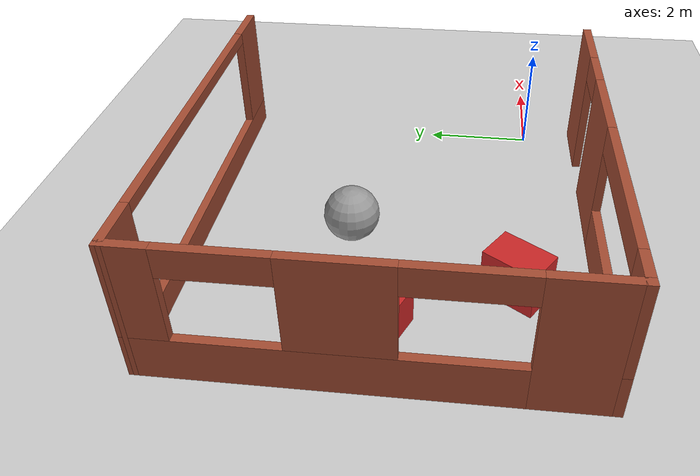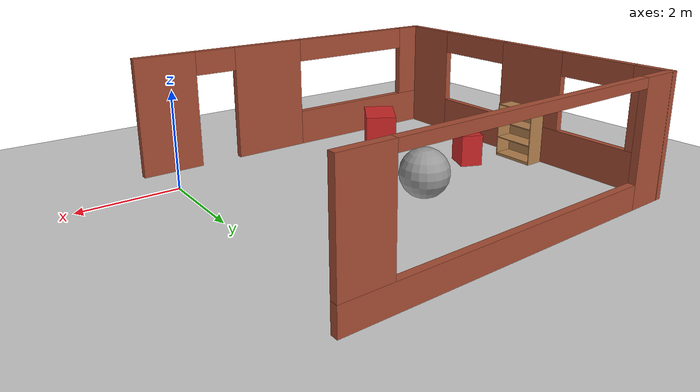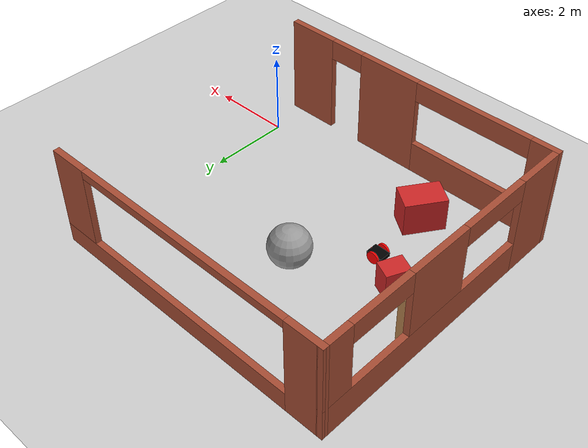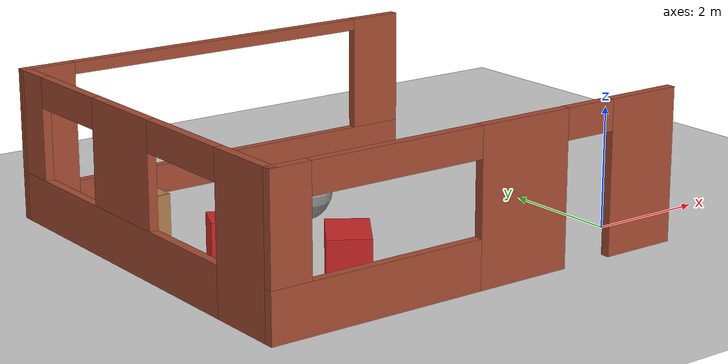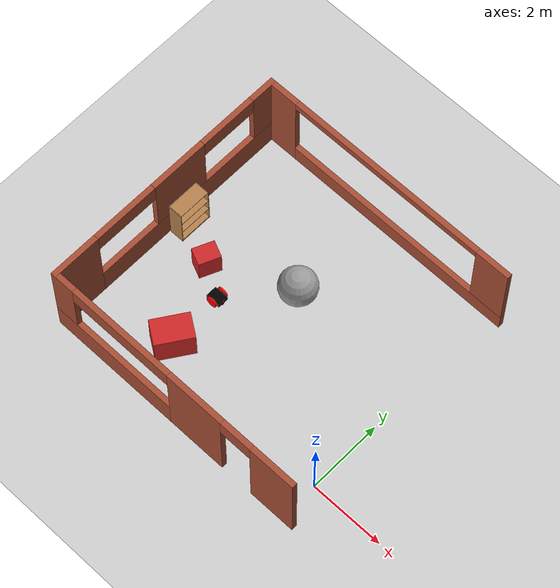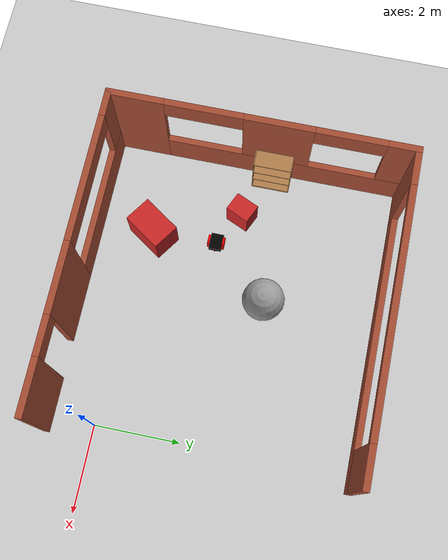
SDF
<sdf version="1.7">
 <world name="default">
  <model name="ground_plane">
   <static>1</static>
   <link name="link">
    <collision name="collision">
     <geometry><plane><normal>0 0 1</normal><size>100 100</size></plane></geometry>
     <surface>
      <contact><collide_bitmask>65535</collide_bitmask></contact>
      <friction><ode><mu>100</mu><mu2>50</mu2></ode></friction>
     </surface>
    </collision>
    <visual name="visual">
     <cast_shadows>0</cast_shadows>
     <geometry><plane><normal>0 0 1</normal><size>100 100</size></plane></geometry>
     <material>
      <script><uri>file://media/materials/scripts/gazebo.material</uri><name>Gazebo/Grey</name></script>
     </material>
    </visual>
   </link>
  </model>
  <model name="bookshelf">
   <static>1</static>
   <link name="link">
    <inertial><mass>1</mass></inertial>
    <collision name="back">
     <pose>0 0.005 0.6 0 -0 0</pose>
     <geometry><box><size>0.9 0.01 1.2</size></box></geometry>
    </collision>
    <visual name="visual1">
     <pose>0 0.005 0.6 0 -0 0</pose>
     <geometry><box><size>0.9 0.01 1.2</size></box></geometry>
     <material>
      <script><uri>file://media/materials/scripts/gazebo.material</uri><name>Gazebo/Wood</name></script>
     </material>
    </visual>
    <collision name="left_side">
     <pose>0.45 -0.195 0.6 0 -0 0</pose>
     <geometry><box><size>0.02 0.4 1.2</size></box></geometry>
    </collision>
    <visual name="visual2">
     <pose>0.45 -0.195 0.6 0 -0 0</pose>
     <geometry><box><size>0.02 0.4 1.2</size></box></geometry>
     <material>
      <script><uri>file://media/materials/scripts/gazebo.material</uri><name>Gazebo/Wood</name></script>
     </material>
    </visual>
    <collision name="right_side">
     <pose>-0.45 -0.195 0.6 0 -0 0</pose>
     <geometry><box><size>0.02 0.4 1.2</size></box></geometry>
    </collision>
    <visual name="visual3">
     <pose>-0.45 -0.195 0.6 0 -0 0</pose>
     <geometry><box><size>0.02 0.4 1.2</size></box></geometry>
     <material>
      <script><uri>file://media/materials/scripts/gazebo.material</uri><name>Gazebo/Wood</name></script>
     </material>
    </visual>
    <collision name="bottom">
     <pose>0 -0.195 0.03 0 -0 0</pose>
     <geometry><box><size>0.88 0.4 0.06</size></box></geometry>
    </collision>
    <visual name="visual4">
     <pose>0 -0.195 0.03 0 -0 0</pose>
     <geometry><box><size>0.88 0.4 0.06</size></box></geometry>
     <material>
      <script><uri>file://media/materials/scripts/gazebo.material</uri><name>Gazebo/Wood</name></script>
     </material>
    </visual>
    <collision name="top">
     <pose>0 -0.195 1.19 0 -0 0</pose>
     <geometry><box><size>0.88 0.4 0.02</size></box></geometry>
    </collision>
    <visual name="visual5">
     <pose>0 -0.195 1.19 0 -0 0</pose>
     <geometry><box><size>0.88 0.4 0.02</size></box></geometry>
     <material>
      <script><uri>file://media/materials/scripts/gazebo.material</uri><name>Gazebo/Wood</name></script>
     </material>
    </visual>
    <collision name="low_shelf">
     <pose>0 -0.195 0.43 0 -0 0</pose>
     <geometry><box><size>0.88 0.4 0.02</size></box></geometry>
    </collision>
    <visual name="visual6">
     <pose>0 -0.195 0.43 0 -0 0</pose>
     <geometry><box><size>0.88 0.4 0.02</size></box></geometry>
     <material>
      <script><uri>file://media/materials/scripts/gazebo.material</uri><name>Gazebo/Wood</name></script>
     </material>
    </visual>
    <collision name="high_shelf">
     <pose>0 -0.195 0.8 0 -0 0</pose>
     <geometry><box><size>0.88 0.4 0.02</size></box></geometry>
    </collision>
    <visual name="visual7">
     <pose>0 -0.195 0.8 0 -0 0</pose>
     <geometry><box><size>0.88 0.4 0.02</size></box></geometry>
     <material>
      <script><uri>file://media/materials/scripts/gazebo.material</uri><name>Gazebo/Wood</name></script>
     </material>
    </visual>
   </link>
   <pose>-6.96679 2.8402 0 0 -0 1.5708</pose>
  </model>
  <model name="unit_sphere">
   <pose>-3.59754 3.23444 0.5 0 -0 0</pose>
   <link name="link">
    <inertial>
     <mass>1</mass>
     <inertia><ixx>0.1</ixx><ixy>0</ixy><ixz>0</ixz><iyy>0.1</iyy><iyz>0</iyz><izz>0.1</izz></inertia>
    </inertial>
    <collision name="collision"><geometry><sphere><radius>0.5</radius></sphere></geometry></collision>
    <visual name="visual">
     <geometry><sphere><radius>0.5</radius></sphere></geometry>
     <material>
      <script><name>Gazebo/Grey</name><uri>file://media/materials/scripts/gazebo.material</uri></script>
     </material>
    </visual>
   </link>
  </model>
  <model name="AssignmentBuilding_0">
   <link name="Wall_36">
    <pose>-2.70744 6.37584 0 0 -0 0</pose>
    <inertial>
     <mass>1</mass>
     <inertia><ixx>1</ixx><ixy>0</ixy><ixz>0</ixz><iyy>1</iyy><iyz>0</iyz><izz>1</izz></inertia>
    </inertial>
    <visual name="Wall_36_Visual_0">
     <pose>-3.28639 0 1.25 0 -0 0</pose>
     <geometry><box><size>0.927226 0.15 2.5</size></box></geometry>
     <material>
      <script><uri>file://media/materials/scripts/gazebo.material</uri><name>Gazebo/Bricks</name></script>
      <ambient>1 1 1 1</ambient>
      <shader type="pixel"><normal_map>__default__</normal_map></shader>
      <diffuse>0 0 0 1</diffuse>
      <specular>0 0 0 1</specular>
      <emissive>0 0 0 1</emissive>
     </material>
     <meta><layer>0</layer></meta>
    </visual>
    <visual name="Wall_36_Visual_1">
     <pose>0.463613 0 0.25 0 -0 0</pose>
     <geometry><box><size>6.57277 0.15 0.5</size></box></geometry>
     <material>
      <script><uri>file://media/materials/scripts/gazebo.material</uri><name>Gazebo/Bricks</name></script>
      <ambient>1 1 1 1</ambient>
      <shader type="pixel"><normal_map>__default__</normal_map></shader>
      <diffuse>0.7 0.7 0.7 1</diffuse>
      <specular>0.01 0.01 0.01 1</specular>
      <emissive>0 0 0 1</emissive>
     </material>
     <meta><layer>0</layer></meta>
    </visual>
    <visual name="Wall_36_Visual_2">
     <pose>3.27261 0 1.5 0 -0 0</pose>
     <geometry><box><size>0.954774 0.15 2</size></box></geometry>
     <material>
      <script><uri>file://media/materials/scripts/gazebo.material</uri><name>Gazebo/Bricks</name></script>
      <ambient>1 1 1 1</ambient>
      <shader type="pixel"><normal_map>__default__</normal_map></shader>
      <diffuse>0.7 0.7 0.7 1</diffuse>
      <specular>0.01 0.01 0.01 1</specular>
      <emissive>0 0 0 1</emissive>
     </material>
     <meta><layer>0</layer></meta>
    </visual>
    <visual name="Wall_36_Visual_3">
     <pose>-0.013774 0 2.4 0 -0 0</pose>
     <geometry><box><size>5.618 0.15 0.2</size></box></geometry>
     <material>
      <script><uri>file://media/materials/scripts/gazebo.material</uri><name>Gazebo/Bricks</name></script>
      <ambient>1 1 1 1</ambient>
      <shader type="pixel"><normal_map>__default__</normal_map></shader>
      <diffuse>0.7 0.7 0.7 1</diffuse>
      <specular>0.01 0.01 0.01 1</specular>
      <emissive>0 0 0 1</emissive>
     </material>
     <meta><layer>0</layer></meta>
    </visual>
    <collision name="Wall_36_Collision_0">
     <pose>-3.28639 0 1.25 0 -0 0</pose>
     <geometry><box><size>0.927226 0.15 2.5</size></box></geometry>
     <surface>
      <friction>
       <ode><mu>1</mu><mu2>1</mu2><fdir1>0 0 0</fdir1><slip1>0</slip1><slip2>0</slip2></ode>
       <torsional>
        <coefficient>1</coefficient>
        <patch_radius>0</patch_radius>
        <surface_radius>0</surface_radius>
        <use_patch_radius>1</use_patch_radius>
        <ode><slip>0</slip></ode>
       </torsional>
      </friction>
      <bounce><restitution_coefficient>0</restitution_coefficient><threshold>1e+06</threshold></bounce>
      <contact>
       <collide_without_contact>0</collide_without_contact>
       <collide_without_contact_bitmask>1</collide_without_contact_bitmask>
       <collide_bitmask>1</collide_bitmask>
       <ode>
        <soft_cfm>0</soft_cfm>
        <soft_erp>0.2</soft_erp>
        <kp>1e+13</kp>
        <kd>1</kd>
        <max_vel>0.01</max_vel>
        <min_depth>0</min_depth>
       </ode>
       <bullet>
        <split_impulse>1</split_impulse>
        <split_impulse_penetration_threshold>-0.01</split_impulse_penetration_threshold>
        <soft_cfm>0</soft_cfm>
        <soft_erp>0.2</soft_erp>
        <kp>1e+13</kp>
        <kd>1</kd>
       </bullet>
      </contact>
     </surface>
    </collision>
    <collision name="Wall_36_Collision_1">
     <pose>0.463613 0 0.25 0 -0 0</pose>
     <geometry><box><size>6.57277 0.15 0.5</size></box></geometry>
     <surface>
      <friction>
       <ode><mu>1</mu><mu2>1</mu2><fdir1>0 0 0</fdir1><slip1>0</slip1><slip2>0</slip2></ode>
       <torsional>
        <coefficient>1</coefficient>
        <patch_radius>0</patch_radius>
        <surface_radius>0</surface_radius>
        <use_patch_radius>1</use_patch_radius>
        <ode><slip>0</slip></ode>
       </torsional>
      </friction>
      <bounce><restitution_coefficient>0</restitution_coefficient><threshold>1e+06</threshold></bounce>
      <contact>
       <collide_without_contact>0</collide_without_contact>
       <collide_without_contact_bitmask>1</collide_without_contact_bitmask>
       <collide_bitmask>1</collide_bitmask>
       <ode>
        <soft_cfm>0</soft_cfm>
        <soft_erp>0.2</soft_erp>
        <kp>1e+13</kp>
        <kd>1</kd>
        <max_vel>0.01</max_vel>
        <min_depth>0</min_depth>
       </ode>
       <bullet>
        <split_impulse>1</split_impulse>
        <split_impulse_penetration_threshold>-0.01</split_impulse_penetration_threshold>
        <soft_cfm>0</soft_cfm>
        <soft_erp>0.2</soft_erp>
        <kp>1e+13</kp>
        <kd>1</kd>
       </bullet>
      </contact>
     </surface>
    </collision>
    <collision name="Wall_36_Collision_2">
     <pose>3.27261 0 1.5 0 -0 0</pose>
     <geometry><box><size>0.954774 0.15 2</size></box></geometry>
     <surface>
      <friction>
       <ode><mu>1</mu><mu2>1</mu2><fdir1>0 0 0</fdir1><slip1>0</slip1><slip2>0</slip2></ode>
       <torsional>
        <coefficient>1</coefficient>
        <patch_radius>0</patch_radius>
        <surface_radius>0</surface_radius>
        <use_patch_radius>1</use_patch_radius>
        <ode><slip>0</slip></ode>
       </torsional>
      </friction>
      <bounce><restitution_coefficient>0</restitution_coefficient><threshold>1e+06</threshold></bounce>
      <contact>
       <collide_without_contact>0</collide_without_contact>
       <collide_without_contact_bitmask>1</collide_without_contact_bitmask>
       <collide_bitmask>1</collide_bitmask>
       <ode>
        <soft_cfm>0</soft_cfm>
        <soft_erp>0.2</soft_erp>
        <kp>1e+13</kp>
        <kd>1</kd>
        <max_vel>0.01</max_vel>
        <min_depth>0</min_depth>
       </ode>
       <bullet>
        <split_impulse>1</split_impulse>
        <split_impulse_penetration_threshold>-0.01</split_impulse_penetration_threshold>
        <soft_cfm>0</soft_cfm>
        <soft_erp>0.2</soft_erp>
        <kp>1e+13</kp>
        <kd>1</kd>
       </bullet>
      </contact>
     </surface>
    </collision>
    <collision name="Wall_36_Collision_3">
     <pose>-0.013774 0 2.4 0 -0 0</pose>
     <geometry><box><size>5.618 0.15 0.2</size></box></geometry>
     <surface>
      <friction>
       <ode><mu>1</mu><mu2>1</mu2><fdir1>0 0 0</fdir1><slip1>0</slip1><slip2>0</slip2></ode>
       <torsional>
        <coefficient>1</coefficient>
        <patch_radius>0</patch_radius>
        <surface_radius>0</surface_radius>
        <use_patch_radius>1</use_patch_radius>
        <ode><slip>0</slip></ode>
       </torsional>
      </friction>
      <bounce><restitution_coefficient>0</restitution_coefficient><threshold>1e+06</threshold></bounce>
      <contact>
       <collide_without_contact>0</collide_without_contact>
       <collide_without_contact_bitmask>1</collide_without_contact_bitmask>
       <collide_bitmask>1</collide_bitmask>
       <ode>
        <soft_cfm>0</soft_cfm>
        <soft_erp>0.2</soft_erp>
        <kp>1e+13</kp>
        <kd>1</kd>
        <max_vel>0.01</max_vel>
        <min_depth>0</min_depth>
       </ode>
       <bullet>
        <split_impulse>1</split_impulse>
        <split_impulse_penetration_threshold>-0.01</split_impulse_penetration_threshold>
        <soft_cfm>0</soft_cfm>
        <soft_erp>0.2</soft_erp>
        <kp>1e+13</kp>
        <kd>1</kd>
       </bullet>
      </contact>
     </surface>
    </collision>
   </link>
   <link name="Wall_48">
    <pose>-6.38208 2.87945 0 0 -0 1.5709</pose>
    <inertial>
     <mass>1</mass>
     <inertia><ixx>1</ixx><ixy>0</ixy><ixz>0</ixz><iyy>1</iyy><iyz>0</iyz><izz>1</izz></inertia>
    </inertial>
    <visual name="Wall_48_Visual_0">
     <pose>-2.89905 0 1.25 0 -0 0</pose>
     <geometry><box><size>1.34467 0.15 2.5</size></box></geometry>
     <material>
      <script><uri>file://media/materials/scripts/gazebo.material</uri><name>Gazebo/Bricks</name></script>
      <ambient>1 1 1 1</ambient>
      <shader type="pixel"><normal_map>__default__</normal_map></shader>
      <diffuse>1 1 1 1</diffuse>
      <specular>0.2 0.2 0.2 1</specular>
      <emissive>0 0 0 1</emissive>
     </material>
     <meta><layer>0</layer></meta>
    </visual>
    <visual name="Wall_48_Visual_1">
     <pose>0.672335 0 0.4 0 -0 0</pose>
     <geometry><box><size>5.7981 0.15 0.8</size></box></geometry>
     <material>
      <script><uri>file://media/materials/scripts/gazebo.material</uri><name>Gazebo/Bricks</name></script>
      <ambient>1 1 1 1</ambient>
      <shader type="pixel"><normal_map>__default__</normal_map></shader>
      <diffuse>0.7 0.7 0.7 1</diffuse>
      <specular>0.01 0.01 0.01 1</specular>
      <emissive>0 0 0 1</emissive>
     </material>
     <meta><layer>0</layer></meta>
    </visual>
    <visual name="Wall_48_Visual_2">
     <pose>0.391018 0 1.65 0 -0 0</pose>
     <geometry><box><size>1.60972 0.15 1.7</size></box></geometry>
     <material>
      <script><uri>file://media/materials/scripts/gazebo.material</uri><name>Gazebo/Bricks</name></script>
      <ambient>1 1 1 1</ambient>
      <shader type="pixel"><normal_map>__default__</normal_map></shader>
      <diffuse>0.7 0.7 0.7 1</diffuse>
      <specular>0.01 0.01 0.01 1</specular>
      <emissive>0 0 0 1</emissive>
     </material>
     <meta><layer>0</layer></meta>
    </visual>
    <visual name="Wall_48_Visual_3">
     <pose>3.19363 0 1.65 0 -0 0</pose>
     <geometry><box><size>0.755509 0.15 1.7</size></box></geometry>
     <material>
      <script><uri>file://media/materials/scripts/gazebo.material</uri><name>Gazebo/Bricks</name></script>
      <ambient>1 1 1 1</ambient>
      <shader type="pixel"><normal_map>__default__</normal_map></shader>
      <diffuse>0.7 0.7 0.7 1</diffuse>
      <specular>0.01 0.01 0.01 1</specular>
      <emissive>0 0 0 1</emissive>
     </material>
     <meta><layer>0</layer></meta>
    </visual>
    <visual name="Wall_48_Visual_4">
     <pose>-1.32028 0 2.25 0 -0 0</pose>
     <geometry><box><size>1.81288 0.15 0.5</size></box></geometry>
     <material>
      <script><uri>file://media/materials/scripts/gazebo.material</uri><name>Gazebo/Bricks</name></script>
      <ambient>1 1 1 1</ambient>
      <shader type="pixel"><normal_map>__default__</normal_map></shader>
      <diffuse>0.7 0.7 0.7 1</diffuse>
      <specular>0.01 0.01 0.01 1</specular>
      <emissive>0 0 0 1</emissive>
     </material>
     <meta><layer>0</layer></meta>
    </visual>
    <visual name="Wall_48_Visual_5">
     <pose>2.00588 0 2.25 0 -0 0</pose>
     <geometry><box><size>1.62 0.15 0.5</size></box></geometry>
     <material>
      <script><uri>file://media/materials/scripts/gazebo.material</uri><name>Gazebo/Bricks</name></script>
      <ambient>1 1 1 1</ambient>
      <shader type="pixel"><normal_map>__default__</normal_map></shader>
      <diffuse>0.7 0.7 0.7 1</diffuse>
      <specular>0.01 0.01 0.01 1</specular>
      <emissive>0 0 0 1</emissive>
     </material>
     <meta><layer>0</layer></meta>
    </visual>
    <collision name="Wall_48_Collision_0">
     <pose>-2.89905 0 1.25 0 -0 0</pose>
     <geometry><box><size>1.34467 0.15 2.5</size></box></geometry>
     <surface>
      <friction>
       <ode><mu>1</mu><mu2>1</mu2><fdir1>0 0 0</fdir1><slip1>0</slip1><slip2>0</slip2></ode>
       <torsional>
        <coefficient>1</coefficient>
        <patch_radius>0</patch_radius>
        <surface_radius>0</surface_radius>
        <use_patch_radius>1</use_patch_radius>
        <ode><slip>0</slip></ode>
       </torsional>
      </friction>
      <bounce><restitution_coefficient>0</restitution_coefficient><threshold>1e+06</threshold></bounce>
      <contact>
       <collide_without_contact>0</collide_without_contact>
       <collide_without_contact_bitmask>1</collide_without_contact_bitmask>
       <collide_bitmask>1</collide_bitmask>
       <ode>
        <soft_cfm>0</soft_cfm>
        <soft_erp>0.2</soft_erp>
        <kp>1e+13</kp>
        <kd>1</kd>
        <max_vel>0.01</max_vel>
        <min_depth>0</min_depth>
       </ode>
       <bullet>
        <split_impulse>1</split_impulse>
        <split_impulse_penetration_threshold>-0.01</split_impulse_penetration_threshold>
        <soft_cfm>0</soft_cfm>
        <soft_erp>0.2</soft_erp>
        <kp>1e+13</kp>
        <kd>1</kd>
       </bullet>
      </contact>
     </surface>
    </collision>
    <collision name="Wall_48_Collision_1">
     <pose>0.672335 0 0.4 0 -0 0</pose>
     <geometry><box><size>5.7981 0.15 0.8</size></box></geometry>
     <surface>
      <friction>
       <ode><mu>1</mu><mu2>1</mu2><fdir1>0 0 0</fdir1><slip1>0</slip1><slip2>0</slip2></ode>
       <torsional>
        <coefficient>1</coefficient>
        <patch_radius>0</patch_radius>
        <surface_radius>0</surface_radius>
        <use_patch_radius>1</use_patch_radius>
        <ode><slip>0</slip></ode>
       </torsional>
      </friction>
      <bounce><restitution_coefficient>0</restitution_coefficient><threshold>1e+06</threshold></bounce>
      <contact>
       <collide_without_contact>0</collide_without_contact>
       <collide_without_contact_bitmask>1</collide_without_contact_bitmask>
       <collide_bitmask>1</collide_bitmask>
       <ode>
        <soft_cfm>0</soft_cfm>
        <soft_erp>0.2</soft_erp>
        <kp>1e+13</kp>
        <kd>1</kd>
        <max_vel>0.01</max_vel>
        <min_depth>0</min_depth>
       </ode>
       <bullet>
        <split_impulse>1</split_impulse>
        <split_impulse_penetration_threshold>-0.01</split_impulse_penetration_threshold>
        <soft_cfm>0</soft_cfm>
        <soft_erp>0.2</soft_erp>
        <kp>1e+13</kp>
        <kd>1</kd>
       </bullet>
      </contact>
     </surface>
    </collision>
    <collision name="Wall_48_Collision_2">
     <pose>0.391018 0 1.65 0 -0 0</pose>
     <geometry><box><size>1.60972 0.15 1.7</size></box></geometry>
     <surface>
      <friction>
       <ode><mu>1</mu><mu2>1</mu2><fdir1>0 0 0</fdir1><slip1>0</slip1><slip2>0</slip2></ode>
       <torsional>
        <coefficient>1</coefficient>
        <patch_radius>0</patch_radius>
        <surface_radius>0</surface_radius>
        <use_patch_radius>1</use_patch_radius>
        <ode><slip>0</slip></ode>
       </torsional>
      </friction>
      <bounce><restitution_coefficient>0</restitution_coefficient><threshold>1e+06</threshold></bounce>
      <contact>
       <collide_without_contact>0</collide_without_contact>
       <collide_without_contact_bitmask>1</collide_without_contact_bitmask>
       <collide_bitmask>1</collide_bitmask>
       <ode>
        <soft_cfm>0</soft_cfm>
        <soft_erp>0.2</soft_erp>
        <kp>1e+13</kp>
        <kd>1</kd>
        <max_vel>0.01</max_vel>
        <min_depth>0</min_depth>
       </ode>
       <bullet>
        <split_impulse>1</split_impulse>
        <split_impulse_penetration_threshold>-0.01</split_impulse_penetration_threshold>
        <soft_cfm>0</soft_cfm>
        <soft_erp>0.2</soft_erp>
        <kp>1e+13</kp>
        <kd>1</kd>
       </bullet>
      </contact>
     </surface>
    </collision>
    <collision name="Wall_48_Collision_3">
     <pose>3.19363 0 1.65 0 -0 0</pose>
     <geometry><box><size>0.755509 0.15 1.7</size></box></geometry>
     <surface>
      <friction>
       <ode><mu>1</mu><mu2>1</mu2><fdir1>0 0 0</fdir1><slip1>0</slip1><slip2>0</slip2></ode>
       <torsional>
        <coefficient>1</coefficient>
        <patch_radius>0</patch_radius>
        <surface_radius>0</surface_radius>
        <use_patch_radius>1</use_patch_radius>
        <ode><slip>0</slip></ode>
       </torsional>
      </friction>
      <bounce><restitution_coefficient>0</restitution_coefficient><threshold>1e+06</threshold></bounce>
      <contact>
       <collide_without_contact>0</collide_without_contact>
       <collide_without_contact_bitmask>1</collide_without_contact_bitmask>
       <collide_bitmask>1</collide_bitmask>
       <ode>
        <soft_cfm>0</soft_cfm>
        <soft_erp>0.2</soft_erp>
        <kp>1e+13</kp>
        <kd>1</kd>
        <max_vel>0.01</max_vel>
        <min_depth>0</min_depth>
       </ode>
       <bullet>
        <split_impulse>1</split_impulse>
        <split_impulse_penetration_threshold>-0.01</split_impulse_penetration_threshold>
        <soft_cfm>0</soft_cfm>
        <soft_erp>0.2</soft_erp>
        <kp>1e+13</kp>
        <kd>1</kd>
       </bullet>
      </contact>
     </surface>
    </collision>
    <collision name="Wall_48_Collision_4">
     <pose>-1.32028 0 2.25 0 -0 0</pose>
     <geometry><box><size>1.81288 0.15 0.5</size></box></geometry>
     <surface>
      <friction>
       <ode><mu>1</mu><mu2>1</mu2><fdir1>0 0 0</fdir1><slip1>0</slip1><slip2>0</slip2></ode>
       <torsional>
        <coefficient>1</coefficient>
        <patch_radius>0</patch_radius>
        <surface_radius>0</surface_radius>
        <use_patch_radius>1</use_patch_radius>
        <ode><slip>0</slip></ode>
       </torsional>
      </friction>
      <bounce><restitution_coefficient>0</restitution_coefficient><threshold>1e+06</threshold></bounce>
      <contact>
       <collide_without_contact>0</collide_without_contact>
       <collide_without_contact_bitmask>1</collide_without_contact_bitmask>
       <collide_bitmask>1</collide_bitmask>
       <ode>
        <soft_cfm>0</soft_cfm>
        <soft_erp>0.2</soft_erp>
        <kp>1e+13</kp>
        <kd>1</kd>
        <max_vel>0.01</max_vel>
        <min_depth>0</min_depth>
       </ode>
       <bullet>
        <split_impulse>1</split_impulse>
        <split_impulse_penetration_threshold>-0.01</split_impulse_penetration_threshold>
        <soft_cfm>0</soft_cfm>
        <soft_erp>0.2</soft_erp>
        <kp>1e+13</kp>
        <kd>1</kd>
       </bullet>
      </contact>
     </surface>
    </collision>
    <collision name="Wall_48_Collision_5">
     <pose>2.00588 0 2.25 0 -0 0</pose>
     <geometry><box><size>1.62 0.15 0.5</size></box></geometry>
     <surface>
      <friction>
       <ode><mu>1</mu><mu2>1</mu2><fdir1>0 0 0</fdir1><slip1>0</slip1><slip2>0</slip2></ode>
       <torsional>
        <coefficient>1</coefficient>
        <patch_radius>0</patch_radius>
        <surface_radius>0</surface_radius>
        <use_patch_radius>1</use_patch_radius>
        <ode><slip>0</slip></ode>
       </torsional>
      </friction>
      <bounce><restitution_coefficient>0</restitution_coefficient><threshold>1e+06</threshold></bounce>
      <contact>
       <collide_without_contact>0</collide_without_contact>
       <collide_without_contact_bitmask>1</collide_without_contact_bitmask>
       <collide_bitmask>1</collide_bitmask>
       <ode>
        <soft_cfm>0</soft_cfm>
        <soft_erp>0.2</soft_erp>
        <kp>1e+13</kp>
        <kd>1</kd>
        <max_vel>0.01</max_vel>
        <min_depth>0</min_depth>
       </ode>
       <bullet>
        <split_impulse>1</split_impulse>
        <split_impulse_penetration_threshold>-0.01</split_impulse_penetration_threshold>
        <soft_cfm>0</soft_cfm>
        <soft_erp>0.2</soft_erp>
        <kp>1e+13</kp>
        <kd>1</kd>
       </bullet>
      </contact>
     </surface>
    </collision>
   </link>
   <link name="Wall_50">
    <pose>-2.70755 -0.616637 0 0 0 -3.14151</pose>
    <inertial>
     <mass>1</mass>
     <inertia><ixx>1</ixx><ixy>0</ixy><ixz>0</ixz><iyy>1</iyy><iyz>0</iyz><izz>1</izz></inertia>
    </inertial>
    <visual name="Wall_50_Visual_0">
     <pose>-3.10542 0 1.25 0 -0 0</pose>
     <geometry><box><size>1.28752 0.15 2.5</size></box></geometry>
     <material>
      <script><uri>file://media/materials/scripts/gazebo.material</uri><name>Gazebo/Bricks</name></script>
      <ambient>1 1 1 1</ambient>
      <shader type="pixel"><normal_map>__default__</normal_map></shader>
      <diffuse>1 1 1 1</diffuse>
      <specular>0.2 0.2 0.2 1</specular>
      <emissive>0 0 0 1</emissive>
     </material>
     <meta><layer>0</layer></meta>
    </visual>
    <visual name="Wall_50_Visual_1">
     <pose>-0.739689 0 1.25 0 -0 0</pose>
     <geometry><box><size>1.64394 0.15 2.5</size></box></geometry>
     <material>
      <script><uri>file://media/materials/scripts/gazebo.material</uri><name>Gazebo/Bricks</name></script>
      <ambient>1 1 1 1</ambient>
      <shader type="pixel"><normal_map>__default__</normal_map></shader>
      <diffuse>0.7 0.7 0.7 1</diffuse>
      <specular>0.01 0.01 0.01 1</specular>
      <emissive>0 0 0 1</emissive>
     </material>
     <meta><layer>0</layer></meta>
    </visual>
    <visual name="Wall_50_Visual_2">
     <pose>1.91573 0 0.4 0 -0 0</pose>
     <geometry><box><size>3.6669 0.15 0.8</size></box></geometry>
     <material>
      <script><uri>file://media/materials/scripts/gazebo.material</uri><name>Gazebo/Bricks</name></script>
      <ambient>1 1 1 1</ambient>
      <shader type="pixel"><normal_map>__default__</normal_map></shader>
      <diffuse>0.7 0.7 0.7 1</diffuse>
      <specular>0.01 0.01 0.01 1</specular>
      <emissive>0 0 0 1</emissive>
     </material>
     <meta><layer>0</layer></meta>
    </visual>
    <visual name="Wall_50_Visual_3">
     <pose>3.40754 0 1.65 0 -0 0</pose>
     <geometry><box><size>0.683277 0.15 1.7</size></box></geometry>
     <material>
      <script><uri>file://media/materials/scripts/gazebo.material</uri><name>Gazebo/Bricks</name></script>
      <ambient>1 1 1 1</ambient>
      <shader type="pixel"><normal_map>__default__</normal_map></shader>
      <diffuse>0.7 0.7 0.7 1</diffuse>
      <specular>0.01 0.01 0.01 1</specular>
      <emissive>0 0 0 1</emissive>
     </material>
     <meta><layer>0</layer></meta>
    </visual>
    <visual name="Wall_50_Visual_4">
     <pose>-2.01166 0 2.25 0 -0 0</pose>
     <geometry><box><size>0.9 0.15 0.5</size></box></geometry>
     <material>
      <script><uri>file://media/materials/scripts/gazebo.material</uri><name>Gazebo/Bricks</name></script>
      <ambient>1 1 1 1</ambient>
      <shader type="pixel"><normal_map>__default__</normal_map></shader>
      <diffuse>0.7 0.7 0.7 1</diffuse>
      <specular>0.01 0.01 0.01 1</specular>
      <emissive>0 0 0 1</emissive>
     </material>
     <meta><layer>0</layer></meta>
    </visual>
    <visual name="Wall_50_Visual_5">
     <pose>1.57409 0 2.25 0 -0 0</pose>
     <geometry><box><size>2.98362 0.15 0.5</size></box></geometry>
     <material>
      <script><uri>file://media/materials/scripts/gazebo.material</uri><name>Gazebo/Bricks</name></script>
      <ambient>1 1 1 1</ambient>
      <shader type="pixel"><normal_map>__default__</normal_map></shader>
      <diffuse>0.7 0.7 0.7 1</diffuse>
      <specular>0.01 0.01 0.01 1</specular>
      <emissive>0 0 0 1</emissive>
     </material>
     <meta><layer>0</layer></meta>
    </visual>
    <collision name="Wall_50_Collision_0">
     <pose>-3.10542 0 1.25 0 -0 0</pose>
     <geometry><box><size>1.28752 0.15 2.5</size></box></geometry>
     <surface>
      <friction>
       <ode><mu>1</mu><mu2>1</mu2><fdir1>0 0 0</fdir1><slip1>0</slip1><slip2>0</slip2></ode>
       <torsional>
        <coefficient>1</coefficient>
        <patch_radius>0</patch_radius>
        <surface_radius>0</surface_radius>
        <use_patch_radius>1</use_patch_radius>
        <ode><slip>0</slip></ode>
       </torsional>
      </friction>
      <bounce><restitution_coefficient>0</restitution_coefficient><threshold>1e+06</threshold></bounce>
      <contact>
       <collide_without_contact>0</collide_without_contact>
       <collide_without_contact_bitmask>1</collide_without_contact_bitmask>
       <collide_bitmask>1</collide_bitmask>
       <ode>
        <soft_cfm>0</soft_cfm>
        <soft_erp>0.2</soft_erp>
        <kp>1e+13</kp>
        <kd>1</kd>
        <max_vel>0.01</max_vel>
        <min_depth>0</min_depth>
       </ode>
       <bullet>
        <split_impulse>1</split_impulse>
        <split_impulse_penetration_threshold>-0.01</split_impulse_penetration_threshold>
        <soft_cfm>0</soft_cfm>
        <soft_erp>0.2</soft_erp>
        <kp>1e+13</kp>
        <kd>1</kd>
       </bullet>
      </contact>
     </surface>
    </collision>
    <collision name="Wall_50_Collision_1">
     <pose>-0.739689 0 1.25 0 -0 0</pose>
     <geometry><box><size>1.64394 0.15 2.5</size></box></geometry>
     <surface>
      <friction>
       <ode><mu>1</mu><mu2>1</mu2><fdir1>0 0 0</fdir1><slip1>0</slip1><slip2>0</slip2></ode>
       <torsional>
        <coefficient>1</coefficient>
        <patch_radius>0</patch_radius>
        <surface_radius>0</surface_radius>
        <use_patch_radius>1</use_patch_radius>
        <ode><slip>0</slip></ode>
       </torsional>
      </friction>
      <bounce><restitution_coefficient>0</restitution_coefficient><threshold>1e+06</threshold></bounce>
      <contact>
       <collide_without_contact>0</collide_without_contact>
       <collide_without_contact_bitmask>1</collide_without_contact_bitmask>
       <collide_bitmask>1</collide_bitmask>
       <ode>
        <soft_cfm>0</soft_cfm>
        <soft_erp>0.2</soft_erp>
        <kp>1e+13</kp>
        <kd>1</kd>
        <max_vel>0.01</max_vel>
        <min_depth>0</min_depth>
       </ode>
       <bullet>
        <split_impulse>1</split_impulse>
        <split_impulse_penetration_threshold>-0.01</split_impulse_penetration_threshold>
        <soft_cfm>0</soft_cfm>
        <soft_erp>0.2</soft_erp>
        <kp>1e+13</kp>
        <kd>1</kd>
       </bullet>
      </contact>
     </surface>
    </collision>
    <collision name="Wall_50_Collision_2">
     <pose>1.91573 0 0.4 0 -0 0</pose>
     <geometry><box><size>3.6669 0.15 0.8</size></box></geometry>
     <surface>
      <friction>
       <ode><mu>1</mu><mu2>1</mu2><fdir1>0 0 0</fdir1><slip1>0</slip1><slip2>0</slip2></ode>
       <torsional>
        <coefficient>1</coefficient>
        <patch_radius>0</patch_radius>
        <surface_radius>0</surface_radius>
        <use_patch_radius>1</use_patch_radius>
        <ode><slip>0</slip></ode>
       </torsional>
      </friction>
      <bounce><restitution_coefficient>0</restitution_coefficient><threshold>1e+06</threshold></bounce>
      <contact>
       <collide_without_contact>0</collide_without_contact>
       <collide_without_contact_bitmask>1</collide_without_contact_bitmask>
       <collide_bitmask>1</collide_bitmask>
       <ode>
        <soft_cfm>0</soft_cfm>
        <soft_erp>0.2</soft_erp>
        <kp>1e+13</kp>
        <kd>1</kd>
        <max_vel>0.01</max_vel>
        <min_depth>0</min_depth>
       </ode>
       <bullet>
        <split_impulse>1</split_impulse>
        <split_impulse_penetration_threshold>-0.01</split_impulse_penetration_threshold>
        <soft_cfm>0</soft_cfm>
        <soft_erp>0.2</soft_erp>
        <kp>1e+13</kp>
        <kd>1</kd>
       </bullet>
      </contact>
     </surface>
    </collision>
    <collision name="Wall_50_Collision_3">
     <pose>3.40754 0 1.65 0 -0 0</pose>
     <geometry><box><size>0.683277 0.15 1.7</size></box></geometry>
     <surface>
      <friction>
       <ode><mu>1</mu><mu2>1</mu2><fdir1>0 0 0</fdir1><slip1>0</slip1><slip2>0</slip2></ode>
       <torsional>
        <coefficient>1</coefficient>
        <patch_radius>0</patch_radius>
        <surface_radius>0</surface_radius>
        <use_patch_radius>1</use_patch_radius>
        <ode><slip>0</slip></ode>
       </torsional>
      </friction>
      <bounce><restitution_coefficient>0</restitution_coefficient><threshold>1e+06</threshold></bounce>
      <contact>
       <collide_without_contact>0</collide_without_contact>
       <collide_without_contact_bitmask>1</collide_without_contact_bitmask>
       <collide_bitmask>1</collide_bitmask>
       <ode>
        <soft_cfm>0</soft_cfm>
        <soft_erp>0.2</soft_erp>
        <kp>1e+13</kp>
        <kd>1</kd>
        <max_vel>0.01</max_vel>
        <min_depth>0</min_depth>
       </ode>
       <bullet>
        <split_impulse>1</split_impulse>
        <split_impulse_penetration_threshold>-0.01</split_impulse_penetration_threshold>
        <soft_cfm>0</soft_cfm>
        <soft_erp>0.2</soft_erp>
        <kp>1e+13</kp>
        <kd>1</kd>
       </bullet>
      </contact>
     </surface>
    </collision>
    <collision name="Wall_50_Collision_4">
     <pose>-2.01166 0 2.25 0 -0 0</pose>
     <geometry><box><size>0.9 0.15 0.5</size></box></geometry>
     <surface>
      <friction>
       <ode><mu>1</mu><mu2>1</mu2><fdir1>0 0 0</fdir1><slip1>0</slip1><slip2>0</slip2></ode>
       <torsional>
        <coefficient>1</coefficient>
        <patch_radius>0</patch_radius>
        <surface_radius>0</surface_radius>
        <use_patch_radius>1</use_patch_radius>
        <ode><slip>0</slip></ode>
       </torsional>
      </friction>
      <bounce><restitution_coefficient>0</restitution_coefficient><threshold>1e+06</threshold></bounce>
      <contact>
       <collide_without_contact>0</collide_without_contact>
       <collide_without_contact_bitmask>1</collide_without_contact_bitmask>
       <collide_bitmask>1</collide_bitmask>
       <ode>
        <soft_cfm>0</soft_cfm>
        <soft_erp>0.2</soft_erp>
        <kp>1e+13</kp>
        <kd>1</kd>
        <max_vel>0.01</max_vel>
        <min_depth>0</min_depth>
       </ode>
       <bullet>
        <split_impulse>1</split_impulse>
        <split_impulse_penetration_threshold>-0.01</split_impulse_penetration_threshold>
        <soft_cfm>0</soft_cfm>
        <soft_erp>0.2</soft_erp>
        <kp>1e+13</kp>
        <kd>1</kd>
       </bullet>
      </contact>
     </surface>
    </collision>
    <collision name="Wall_50_Collision_5">
     <pose>1.57409 0 2.25 0 -0 0</pose>
     <geometry><box><size>2.98362 0.15 0.5</size></box></geometry>
     <surface>
      <friction>
       <ode><mu>1</mu><mu2>1</mu2><fdir1>0 0 0</fdir1><slip1>0</slip1><slip2>0</slip2></ode>
       <torsional>
        <coefficient>1</coefficient>
        <patch_radius>0</patch_radius>
        <surface_radius>0</surface_radius>
        <use_patch_radius>1</use_patch_radius>
        <ode><slip>0</slip></ode>
       </torsional>
      </friction>
      <bounce><restitution_coefficient>0</restitution_coefficient><threshold>1e+06</threshold></bounce>
      <contact>
       <collide_without_contact>0</collide_without_contact>
       <collide_without_contact_bitmask>1</collide_without_contact_bitmask>
       <collide_bitmask>1</collide_bitmask>
       <ode>
        <soft_cfm>0</soft_cfm>
        <soft_erp>0.2</soft_erp>
        <kp>1e+13</kp>
        <kd>1</kd>
        <max_vel>0.01</max_vel>
        <min_depth>0</min_depth>
       </ode>
       <bullet>
        <split_impulse>1</split_impulse>
        <split_impulse_penetration_threshold>-0.01</split_impulse_penetration_threshold>
        <soft_cfm>0</soft_cfm>
        <soft_erp>0.2</soft_erp>
        <kp>1e+13</kp>
        <kd>1</kd>
       </bullet>
      </contact>
     </surface>
    </collision>
   </link>
   <static>1</static>
   <pose>-0.68157 -0.42903 0 0 -0 0</pose>
  </model>
  <model name="unit_box">
   <link name="link">
    <inertial>
     <mass>1</mass>
     <inertia>
      <ixx>0.166667</ixx>
      <ixy>0</ixy>
      <ixz>0</ixz>
      <iyy>0.166667</iyy>
      <iyz>0</iyz>
      <izz>0.166667</izz>
     </inertia>
    </inertial>
    <visual name="visual">
     <geometry><box><size>0.675313 1 0.84475</size></box></geometry>
     <material>
      <script><name>Gazebo/Red</name><uri>file://media/materials/scripts/gazebo.material</uri></script>
      <shader type="pixel"><normal_map>__default__</normal_map></shader>
      <ambient>1 0 0 1</ambient>
      <diffuse>1 0 0 1</diffuse>
      <specular>0.1 0.1 0.1 1</specular>
      <emissive>0 0 0 1</emissive>
     </material>
    </visual>
    <collision name="collision">
     <geometry><box><size>0.675313 1 0.84475</size></box></geometry>
     <surface>
      <friction>
       <ode><mu>1</mu><mu2>1</mu2><fdir1>0 0 0</fdir1><slip1>0</slip1><slip2>0</slip2></ode>
       <torsional>
        <coefficient>1</coefficient>
        <patch_radius>0</patch_radius>
        <surface_radius>0</surface_radius>
        <use_patch_radius>1</use_patch_radius>
        <ode><slip>0</slip></ode>
       </torsional>
      </friction>
      <bounce><restitution_coefficient>0</restitution_coefficient><threshold>1e+06</threshold></bounce>
      <contact>
       <collide_without_contact>0</collide_without_contact>
       <collide_without_contact_bitmask>1</collide_without_contact_bitmask>
       <collide_bitmask>1</collide_bitmask>
       <ode>
        <soft_cfm>0</soft_cfm>
        <soft_erp>0.2</soft_erp>
        <kp>1e+13</kp>
        <kd>1</kd>
        <max_vel>0.01</max_vel>
        <min_depth>0</min_depth>
       </ode>
       <bullet>
        <split_impulse>1</split_impulse>
        <split_impulse_penetration_threshold>-0.01</split_impulse_penetration_threshold>
        <soft_cfm>0</soft_cfm>
        <soft_erp>0.2</soft_erp>
        <kp>1e+13</kp>
        <kd>1</kd>
       </bullet>
      </contact>
     </surface>
    </collision>
   </link>
   <static>0</static>
   <pose>-4.81229 0.307396 0.422375 0 0 -0.594681</pose>
  </model>
  <model name="unit_box_3_clone_2">
   <link name="link">
    <inertial>
     <mass>1</mass>
     <inertia>
      <ixx>0.166667</ixx>
      <ixy>0</ixy>
      <ixz>0</ixz>
      <iyy>0.166667</iyy>
      <iyz>0</iyz>
      <izz>0.166667</izz>
     </inertia>
    </inertial>
    <visual name="visual">
     <geometry><box><size>0.46783 0.587718 0.68729</size></box></geometry>
     <material>
      <script><name>Gazebo/Red</name><uri>file://media/materials/scripts/gazebo.material</uri></script>
      <shader type="pixel"><normal_map>__default__</normal_map></shader>
      <ambient>1 0 0 1</ambient>
      <diffuse>1 0 0 1</diffuse>
      <specular>0.1 0.1 0.1 1</specular>
      <emissive>0 0 0 1</emissive>
     </material>
    </visual>
    <collision name="collision">
     <geometry><box><size>0.46783 0.587718 0.68729</size></box></geometry>
     <surface>
      <friction>
       <ode><mu>1</mu><mu2>1</mu2><fdir1>0 0 0</fdir1><slip1>0</slip1><slip2>0</slip2></ode>
       <torsional>
        <coefficient>1</coefficient>
        <patch_radius>0</patch_radius>
        <surface_radius>0</surface_radius>
        <use_patch_radius>1</use_patch_radius>
        <ode><slip>0</slip></ode>
       </torsional>
      </friction>
      <bounce><restitution_coefficient>0</restitution_coefficient><threshold>1e+06</threshold></bounce>
      <contact>
       <collide_without_contact>0</collide_without_contact>
       <collide_without_contact_bitmask>1</collide_without_contact_bitmask>
       <collide_bitmask>1</collide_bitmask>
       <ode>
        <soft_cfm>0</soft_cfm>
        <soft_erp>0.2</soft_erp>
        <kp>1e+13</kp>
        <kd>1</kd>
        <max_vel>0.01</max_vel>
        <min_depth>0</min_depth>
       </ode>
       <bullet>
        <split_impulse>1</split_impulse>
        <split_impulse_penetration_threshold>-0.01</split_impulse_penetration_threshold>
        <soft_cfm>0</soft_cfm>
        <soft_erp>0.2</soft_erp>
        <kp>1e+13</kp>
        <kd>1</kd>
       </bullet>
      </contact>
     </surface>
    </collision>
   </link>
   <static>0</static>
   <pose>-5.68656 2.31135 0.343645 0 0 -0.420452</pose>
  </model>
  <model name="Roomba">
   <static>0</static>
   <link name="chassis">
    <pose>0 0 0.15 0 -0 0</pose>
    <collision name="collision"><geometry><box><size>0.4 0.3 0.1</size></box></geometry></collision>
    <visual name="visual">
     <geometry><box><size>0.4 0.3 0.1</size></box></geometry>
     <material><ambient>0 0 0 0.5</ambient><diffuse>0 0 0 1</diffuse></material>
    </visual>
    <collision name="caster_collision_1">
     <pose>-0.15 0 -0.1 0 -0 0</pose>
     <geometry><sphere><radius>0.05</radius></sphere></geometry>
     <surface><friction><ode><mu>0</mu><mu2>0</mu2><slip1>1</slip1><slip2>1</slip2></ode></friction></surface>
    </collision>
    <visual name="caster_visual_1">
     <pose>-0.15 0 -0.1 0 -0 0</pose>
     <geometry><sphere><radius>0.05</radius></sphere></geometry>
     <material><ambient>1 0 0 0.5</ambient><diffuse>1 0 0 1</diffuse></material>
    </visual>
    <collision name="caster_collision_2">
     <pose>0.15 0 -0.1 0 -0 0</pose>
     <geometry><sphere><radius>0.05</radius></sphere></geometry>
     <surface><friction><ode><mu>0</mu><mu2>0</mu2><slip1>1</slip1><slip2>1</slip2></ode></friction></surface>
    </collision>
    <visual name="caster_visual_2">
     <pose>0.15 0 -0.1 0 -0 0</pose>
     <geometry><sphere><radius>0.05</radius></sphere></geometry>
     <material><ambient>1 0 0 0.5</ambient><diffuse>1 0 0 1</diffuse></material>
    </visual>
    <collision name="sensor_collision">
     <pose>0.19 0 0.055 0 -0 0</pose>
     <geometry><box><size>0.01 0.02 0.01</size></box></geometry>
    </collision>
    <visual name="sensor_visual">
     <pose>0.19 0 0.055 0 -0 0</pose>
     <geometry><box><size>0.01 0.02 0.01</size></box></geometry>
     <material><ambient>1 0 0 0.5</ambient><diffuse>1 0 0 1</diffuse></material>
    </visual>
    <sensor name="sensor" type="gpu_ray">
     <pose>0.2 0 0.055 0 -0 0</pose>
     <visualize>1</visualize>
     <update_rate>10</update_rate>
     <ray>
      <scan>
       <horizontal>
        <samples>720</samples>
        <resolution>1</resolution>
        <min_angle>-1.5708</min_angle>
        <max_angle>1.5708</max_angle>
       </horizontal>
      </scan>
      <range><min>0.05</min><max>15</max><resolution>0.02</resolution></range>
      <noise><type>gaussian</type><mean>0</mean><stddev>0.01</stddev></noise>
     </ray>
     <plugin name="gazebo_ros_head_hokuyo_controller" filename="libgazebo_ros_gpu_laser.so">
      <topicName>/Roomba/laser/scan</topicName>
      <frameName>chassis</frameName>
      <robotNamespace>roomba</robotNamespace>
     </plugin>
    </sensor>
    <inertial>
     <inertia><ixx>1</ixx><ixy>0</ixy><ixz>0</ixz><iyy>1</iyy><iyz>0</iyz><izz>1</izz></inertia>
     <mass>1</mass>
    </inertial>
   </link>
   <link name="left_wheel">
    <pose>0 0.175 0.15 -0 1.5707 1.5707</pose>
    <collision name="collision">
     <geometry><cylinder><radius>0.15</radius><length>0.05</length></cylinder></geometry>
    </collision>
    <visual name="visual">
     <geometry><cylinder><radius>0.15</radius><length>0.05</length></cylinder></geometry>
     <material><ambient>1 0 0 0.5</ambient><diffuse>1 0 0 1</diffuse></material>
    </visual>
    <inertial>
     <inertia><ixx>1</ixx><ixy>0</ixy><ixz>0</ixz><iyy>1</iyy><iyz>0</iyz><izz>1</izz></inertia>
     <mass>1</mass>
    </inertial>
   </link>
   <link name="right_wheel">
    <pose>0 -0.175 0.15 -0 1.5707 1.5707</pose>
    <collision name="collision">
     <geometry><cylinder><radius>0.15</radius><length>0.05</length></cylinder></geometry>
    </collision>
    <visual name="visual">
     <geometry><cylinder><radius>0.15</radius><length>0.05</length></cylinder></geometry>
     <material><ambient>1 0 0 0.5</ambient><diffuse>1 0 0 1</diffuse></material>
    </visual>
    <inertial>
     <inertia><ixx>1</ixx><ixy>0</ixy><ixz>0</ixz><iyy>1</iyy><iyz>0</iyz><izz>1</izz></inertia>
     <mass>1</mass>
    </inertial>
   </link>
   <joint name="left_wheel_hinge" type="revolute">
    <child>left_wheel</child>
    <parent>chassis</parent>
    <axis>
     <xyz>0 1 0</xyz>
     <use_parent_model_frame>1</use_parent_model_frame>
     <limit><lower>-1e+16</lower><upper>1e+16</upper></limit>
     <dynamics><spring_reference>0</spring_reference><spring_stiffness>0</spring_stiffness></dynamics>
    </axis>
   </joint>
   <joint name="right_wheel_hinge" type="revolute">
    <child>right_wheel</child>
    <parent>chassis</parent>
    <axis>
     <xyz>0 1 0</xyz>
     <use_parent_model_frame>1</use_parent_model_frame>
     <limit><lower>-1e+16</lower><upper>1e+16</upper></limit>
     <dynamics><spring_reference>0</spring_reference><spring_stiffness>0</spring_stiffness></dynamics>
    </axis>
   </joint>
   <plugin name="differential_drive_controller" filename="libgazebo_ros_diff_drive.so">
    <alwaysOn>1</alwaysOn>
    <updateRate>10</updateRate>
    <leftJoint>left_wheel_hinge</leftJoint>
    <rightJoint>right_wheel_hinge</rightJoint>
    <wheelSeparation>0.3</wheelSeparation>
    <wheelDiameter>0.3</wheelDiameter>
    <wheelTorque>1.5</wheelTorque>
    <commandTopic>cmd_vel</commandTopic>
    <odometryTopic>odom</odometryTopic>
    <odometryFrame>odom</odometryFrame>
    <robotBaseFrame>base_footprint</robotBaseFrame>
    <publishWheelTF>0</publishWheelTF>
    <publishOdomTF>1</publishOdomTF>
    <wheelAcceleration>0</wheelAcceleration>
    <odometrySource>1</odometrySource>
   </plugin>
   <pose>-4.88454 1.83731 0 0 -0 0</pose>
  </model>
 </world>
</sdf>
